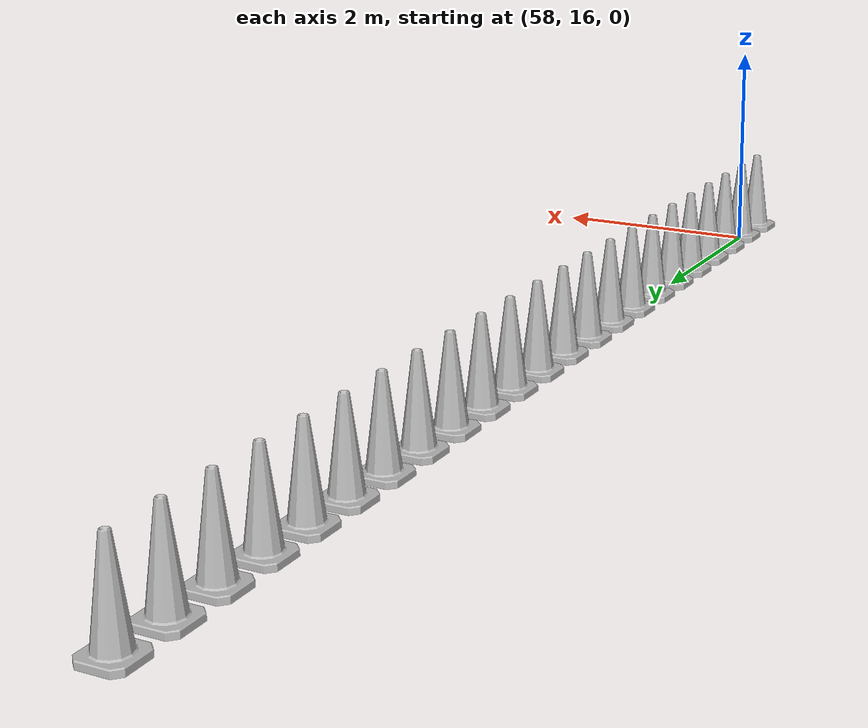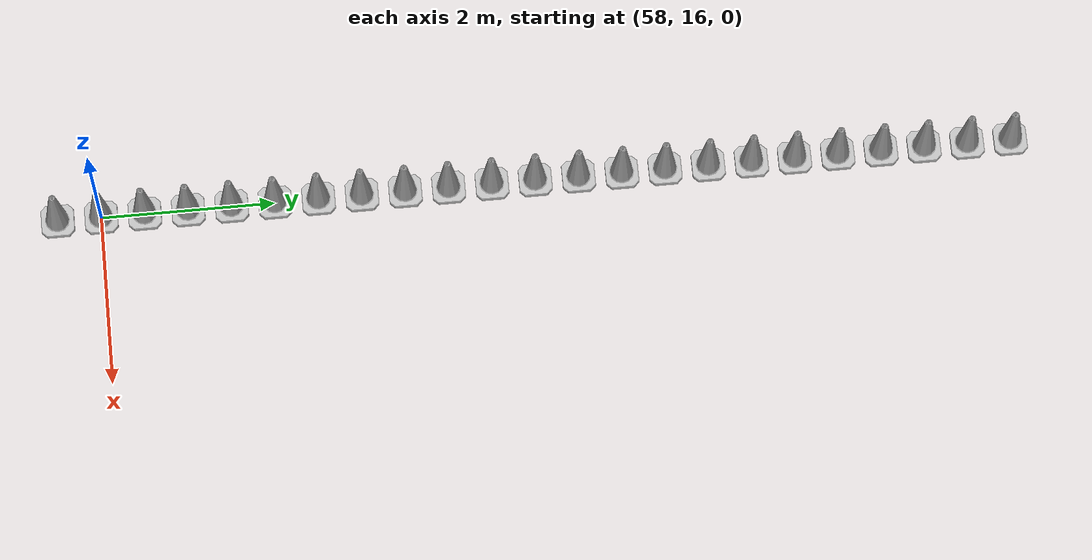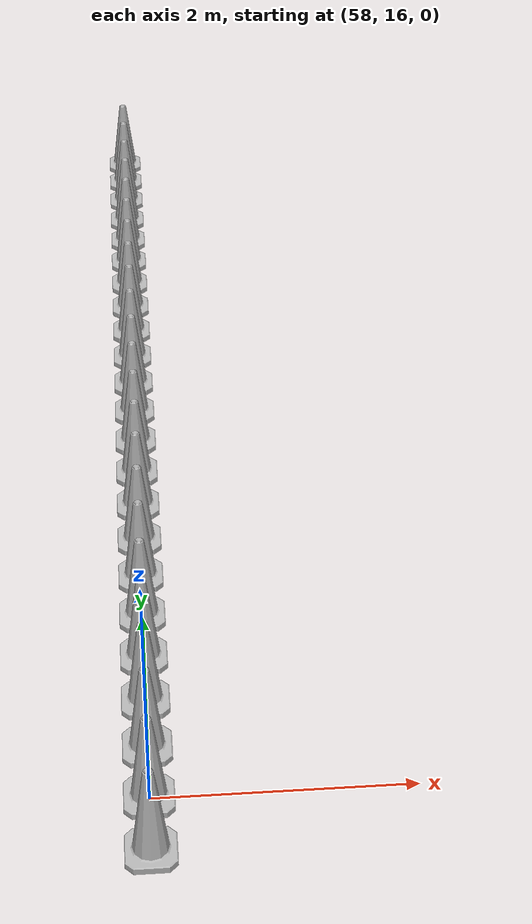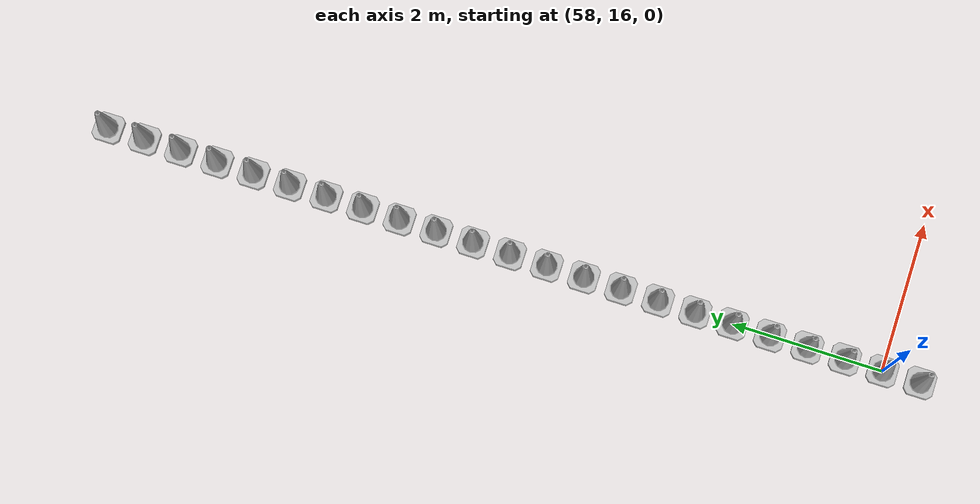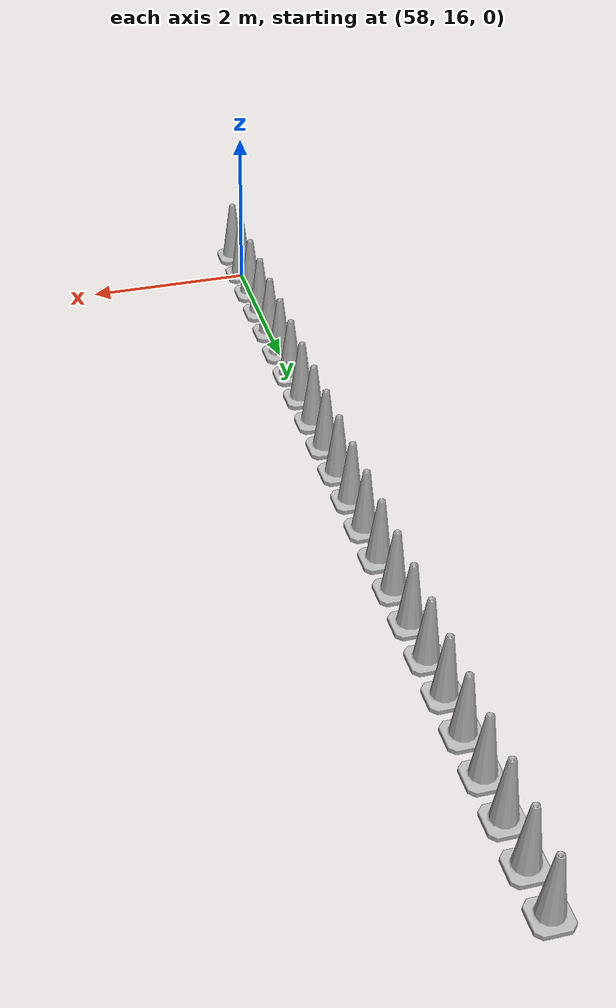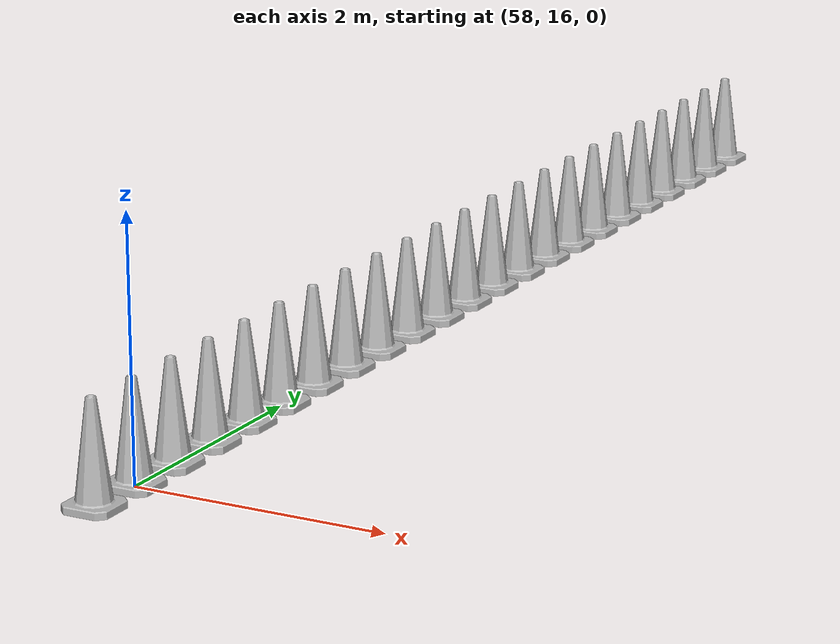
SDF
<sdf version="1.4">
 <world name="default">
  <include><uri>model://sun</uri></include>
  <model name="Construction Cone 14">
   <link name="link">
    <collision name="collision">
     <geometry>
      <mesh><scale>7.5 7.5 7.5</scale><uri>model://construction_cone/meshes/construction_cone.dae</uri></mesh>
     </geometry>
    </collision>
    <visual name="visual">
     <geometry>
      <mesh><scale>7.5 7.5 7.5</scale><uri>model://construction_cone/meshes/construction_cone.dae</uri></mesh>
     </geometry>
    </visual>
    <velocity_decay><linear>0</linear><angular>0</angular></velocity_decay>
    <inertial>
     <inertia><ixx>1</ixx><ixy>0</ixy><ixz>0</ixz><iyy>1</iyy><iyz>0</iyz><izz>1</izz></inertia>
     <mass>1</mass>
    </inertial>
   </link>
   <pose>58 15.5 0 0 -0 0</pose>
   <static>0</static>
  </model>
  <model name="Construction Cone 15">
   <link name="link">
    <collision name="collision">
     <geometry>
      <mesh><scale>7.5 7.5 7.5</scale><uri>model://construction_cone/meshes/construction_cone.dae</uri></mesh>
     </geometry>
    </collision>
    <visual name="visual">
     <geometry>
      <mesh><scale>7.5 7.5 7.5</scale><uri>model://construction_cone/meshes/construction_cone.dae</uri></mesh>
     </geometry>
    </visual>
    <velocity_decay><linear>0</linear><angular>0</angular></velocity_decay>
    <inertial>
     <inertia><ixx>1</ixx><ixy>0</ixy><ixz>0</ixz><iyy>1</iyy><iyz>0</iyz><izz>1</izz></inertia>
     <mass>1</mass>
    </inertial>
   </link>
   <pose>58 16 0 0 -0 0</pose>
   <static>0</static>
  </model>
  <model name="Construction Cone 16">
   <link name="link">
    <collision name="collision">
     <geometry>
      <mesh><scale>7.5 7.5 7.5</scale><uri>model://construction_cone/meshes/construction_cone.dae</uri></mesh>
     </geometry>
    </collision>
    <visual name="visual">
     <geometry>
      <mesh><scale>7.5 7.5 7.5</scale><uri>model://construction_cone/meshes/construction_cone.dae</uri></mesh>
     </geometry>
    </visual>
    <velocity_decay><linear>0</linear><angular>0</angular></velocity_decay>
    <inertial>
     <inertia><ixx>1</ixx><ixy>0</ixy><ixz>0</ixz><iyy>1</iyy><iyz>0</iyz><izz>1</izz></inertia>
     <mass>1</mass>
    </inertial>
   </link>
   <pose>58 16.5 0 0 -0 0</pose>
   <static>0</static>
  </model>
  <model name="Construction Cone 17">
   <link name="link">
    <collision name="collision">
     <geometry>
      <mesh><scale>7.5 7.5 7.5</scale><uri>model://construction_cone/meshes/construction_cone.dae</uri></mesh>
     </geometry>
    </collision>
    <visual name="visual">
     <geometry>
      <mesh><scale>7.5 7.5 7.5</scale><uri>model://construction_cone/meshes/construction_cone.dae</uri></mesh>
     </geometry>
    </visual>
    <velocity_decay><linear>0</linear><angular>0</angular></velocity_decay>
    <inertial>
     <inertia><ixx>1</ixx><ixy>0</ixy><ixz>0</ixz><iyy>1</iyy><iyz>0</iyz><izz>1</izz></inertia>
     <mass>1</mass>
    </inertial>
   </link>
   <pose>58 17 0 0 -0 0</pose>
   <static>0</static>
  </model>
  <model name="Construction Cone 18">
   <link name="link">
    <collision name="collision">
     <geometry>
      <mesh><scale>7.5 7.5 7.5</scale><uri>model://construction_cone/meshes/construction_cone.dae</uri></mesh>
     </geometry>
    </collision>
    <visual name="visual">
     <geometry>
      <mesh><scale>7.5 7.5 7.5</scale><uri>model://construction_cone/meshes/construction_cone.dae</uri></mesh>
     </geometry>
    </visual>
    <velocity_decay><linear>0</linear><angular>0</angular></velocity_decay>
    <inertial>
     <inertia><ixx>1</ixx><ixy>0</ixy><ixz>0</ixz><iyy>1</iyy><iyz>0</iyz><izz>1</izz></inertia>
     <mass>1</mass>
    </inertial>
   </link>
   <pose>58 17.5 0 0 -0 0</pose>
   <static>0</static>
  </model>
  <model name="Construction Cone 19">
   <link name="link">
    <collision name="collision">
     <geometry>
      <mesh><scale>7.5 7.5 7.5</scale><uri>model://construction_cone/meshes/construction_cone.dae</uri></mesh>
     </geometry>
    </collision>
    <visual name="visual">
     <geometry>
      <mesh><scale>7.5 7.5 7.5</scale><uri>model://construction_cone/meshes/construction_cone.dae</uri></mesh>
     </geometry>
    </visual>
    <velocity_decay><linear>0</linear><angular>0</angular></velocity_decay>
    <inertial>
     <inertia><ixx>1</ixx><ixy>0</ixy><ixz>0</ixz><iyy>1</iyy><iyz>0</iyz><izz>1</izz></inertia>
     <mass>1</mass>
    </inertial>
   </link>
   <pose>58 18 0 0 -0 0</pose>
   <static>0</static>
  </model>
  <model name="Construction Cone 20">
   <link name="link">
    <collision name="collision">
     <geometry>
      <mesh><scale>7.5 7.5 7.5</scale><uri>model://construction_cone/meshes/construction_cone.dae</uri></mesh>
     </geometry>
    </collision>
    <visual name="visual">
     <geometry>
      <mesh><scale>7.5 7.5 7.5</scale><uri>model://construction_cone/meshes/construction_cone.dae</uri></mesh>
     </geometry>
    </visual>
    <velocity_decay><linear>0</linear><angular>0</angular></velocity_decay>
    <inertial>
     <inertia><ixx>1</ixx><ixy>0</ixy><ixz>0</ixz><iyy>1</iyy><iyz>0</iyz><izz>1</izz></inertia>
     <mass>1</mass>
    </inertial>
   </link>
   <pose>58 18.5 0 0 -0 0</pose>
   <static>0</static>
  </model>
  <model name="Construction Cone 21">
   <link name="link">
    <collision name="collision">
     <geometry>
      <mesh><scale>7.5 7.5 7.5</scale><uri>model://construction_cone/meshes/construction_cone.dae</uri></mesh>
     </geometry>
    </collision>
    <visual name="visual">
     <geometry>
      <mesh><scale>7.5 7.5 7.5</scale><uri>model://construction_cone/meshes/construction_cone.dae</uri></mesh>
     </geometry>
    </visual>
    <velocity_decay><linear>0</linear><angular>0</angular></velocity_decay>
    <inertial>
     <inertia><ixx>1</ixx><ixy>0</ixy><ixz>0</ixz><iyy>1</iyy><iyz>0</iyz><izz>1</izz></inertia>
     <mass>1</mass>
    </inertial>
   </link>
   <pose>58 19 0 0 -0 0</pose>
   <static>0</static>
  </model>
  <model name="Construction Cone 22">
   <link name="link">
    <collision name="collision">
     <geometry>
      <mesh><scale>7.5 7.5 7.5</scale><uri>model://construction_cone/meshes/construction_cone.dae</uri></mesh>
     </geometry>
    </collision>
    <visual name="visual">
     <geometry>
      <mesh><scale>7.5 7.5 7.5</scale><uri>model://construction_cone/meshes/construction_cone.dae</uri></mesh>
     </geometry>
    </visual>
    <velocity_decay><linear>0</linear><angular>0</angular></velocity_decay>
    <inertial>
     <inertia><ixx>1</ixx><ixy>0</ixy><ixz>0</ixz><iyy>1</iyy><iyz>0</iyz><izz>1</izz></inertia>
     <mass>1</mass>
    </inertial>
   </link>
   <pose>58 19.5 0 0 -0 0</pose>
   <static>0</static>
  </model>
  <model name="Construction Cone 23">
   <link name="link">
    <collision name="collision">
     <geometry>
      <mesh><scale>7.5 7.5 7.5</scale><uri>model://construction_cone/meshes/construction_cone.dae</uri></mesh>
     </geometry>
    </collision>
    <visual name="visual">
     <geometry>
      <mesh><scale>7.5 7.5 7.5</scale><uri>model://construction_cone/meshes/construction_cone.dae</uri></mesh>
     </geometry>
    </visual>
    <velocity_decay><linear>0</linear><angular>0</angular></velocity_decay>
    <inertial>
     <inertia><ixx>1</ixx><ixy>0</ixy><ixz>0</ixz><iyy>1</iyy><iyz>0</iyz><izz>1</izz></inertia>
     <mass>1</mass>
    </inertial>
   </link>
   <pose>58 20 0 0 -0 0</pose>
   <static>0</static>
  </model>
  <model name="Construction Cone 24">
   <link name="link">
    <collision name="collision">
     <geometry>
      <mesh><scale>7.5 7.5 7.5</scale><uri>model://construction_cone/meshes/construction_cone.dae</uri></mesh>
     </geometry>
    </collision>
    <visual name="visual">
     <geometry>
      <mesh><scale>7.5 7.5 7.5</scale><uri>model://construction_cone/meshes/construction_cone.dae</uri></mesh>
     </geometry>
    </visual>
    <velocity_decay><linear>0</linear><angular>0</angular></velocity_decay>
    <inertial>
     <inertia><ixx>1</ixx><ixy>0</ixy><ixz>0</ixz><iyy>1</iyy><iyz>0</iyz><izz>1</izz></inertia>
     <mass>1</mass>
    </inertial>
   </link>
   <pose>58 20.5 0 0 -0 0</pose>
   <static>0</static>
  </model>
  <model name="Construction Cone 25">
   <link name="link">
    <collision name="collision">
     <geometry>
      <mesh><scale>7.5 7.5 7.5</scale><uri>model://construction_cone/meshes/construction_cone.dae</uri></mesh>
     </geometry>
    </collision>
    <visual name="visual">
     <geometry>
      <mesh><scale>7.5 7.5 7.5</scale><uri>model://construction_cone/meshes/construction_cone.dae</uri></mesh>
     </geometry>
    </visual>
    <velocity_decay><linear>0</linear><angular>0</angular></velocity_decay>
    <inertial>
     <inertia><ixx>1</ixx><ixy>0</ixy><ixz>0</ixz><iyy>1</iyy><iyz>0</iyz><izz>1</izz></inertia>
     <mass>1</mass>
    </inertial>
   </link>
   <pose>58 21 0 0 -0 0</pose>
   <static>0</static>
  </model>
  <model name="Construction Cone 26">
   <link name="link">
    <collision name="collision">
     <geometry>
      <mesh><scale>7.5 7.5 7.5</scale><uri>model://construction_cone/meshes/construction_cone.dae</uri></mesh>
     </geometry>
    </collision>
    <visual name="visual">
     <geometry>
      <mesh><scale>7.5 7.5 7.5</scale><uri>model://construction_cone/meshes/construction_cone.dae</uri></mesh>
     </geometry>
    </visual>
    <velocity_decay><linear>0</linear><angular>0</angular></velocity_decay>
    <inertial>
     <inertia><ixx>1</ixx><ixy>0</ixy><ixz>0</ixz><iyy>1</iyy><iyz>0</iyz><izz>1</izz></inertia>
     <mass>1</mass>
    </inertial>
   </link>
   <pose>58 21.5 0 0 -0 0</pose>
   <static>0</static>
  </model>
  <model name="Construction Cone 27">
   <link name="link">
    <collision name="collision">
     <geometry>
      <mesh><scale>7.5 7.5 7.5</scale><uri>model://construction_cone/meshes/construction_cone.dae</uri></mesh>
     </geometry>
    </collision>
    <visual name="visual">
     <geometry>
      <mesh><scale>7.5 7.5 7.5</scale><uri>model://construction_cone/meshes/construction_cone.dae</uri></mesh>
     </geometry>
    </visual>
    <velocity_decay><linear>0</linear><angular>0</angular></velocity_decay>
    <inertial>
     <inertia><ixx>1</ixx><ixy>0</ixy><ixz>0</ixz><iyy>1</iyy><iyz>0</iyz><izz>1</izz></inertia>
     <mass>1</mass>
    </inertial>
   </link>
   <pose>58 22 0 0 -0 0</pose>
   <static>0</static>
  </model>
  <model name="Construction Cone 28">
   <link name="link">
    <collision name="collision">
     <geometry>
      <mesh><scale>7.5 7.5 7.5</scale><uri>model://construction_cone/meshes/construction_cone.dae</uri></mesh>
     </geometry>
    </collision>
    <visual name="visual">
     <geometry>
      <mesh><scale>7.5 7.5 7.5</scale><uri>model://construction_cone/meshes/construction_cone.dae</uri></mesh>
     </geometry>
    </visual>
    <velocity_decay><linear>0</linear><angular>0</angular></velocity_decay>
    <inertial>
     <inertia><ixx>1</ixx><ixy>0</ixy><ixz>0</ixz><iyy>1</iyy><iyz>0</iyz><izz>1</izz></inertia>
     <mass>1</mass>
    </inertial>
   </link>
   <pose>58 22.5 0 0 -0 0</pose>
   <static>0</static>
  </model>
  <model name="Construction Cone 29">
   <link name="link">
    <collision name="collision">
     <geometry>
      <mesh><scale>7.5 7.5 7.5</scale><uri>model://construction_cone/meshes/construction_cone.dae</uri></mesh>
     </geometry>
    </collision>
    <visual name="visual">
     <geometry>
      <mesh><scale>7.5 7.5 7.5</scale><uri>model://construction_cone/meshes/construction_cone.dae</uri></mesh>
     </geometry>
    </visual>
    <velocity_decay><linear>0</linear><angular>0</angular></velocity_decay>
    <inertial>
     <inertia><ixx>1</ixx><ixy>0</ixy><ixz>0</ixz><iyy>1</iyy><iyz>0</iyz><izz>1</izz></inertia>
     <mass>1</mass>
    </inertial>
   </link>
   <pose>58 23 0 0 -0 0</pose>
   <static>0</static>
  </model>
  <model name="Construction Cone 30">
   <link name="link">
    <collision name="collision">
     <geometry>
      <mesh><scale>7.5 7.5 7.5</scale><uri>model://construction_cone/meshes/construction_cone.dae</uri></mesh>
     </geometry>
    </collision>
    <visual name="visual">
     <geometry>
      <mesh><scale>7.5 7.5 7.5</scale><uri>model://construction_cone/meshes/construction_cone.dae</uri></mesh>
     </geometry>
    </visual>
    <velocity_decay><linear>0</linear><angular>0</angular></velocity_decay>
    <inertial>
     <inertia><ixx>1</ixx><ixy>0</ixy><ixz>0</ixz><iyy>1</iyy><iyz>0</iyz><izz>1</izz></inertia>
     <mass>1</mass>
    </inertial>
   </link>
   <pose>58 23.5 0 0 -0 0</pose>
   <static>0</static>
  </model>
  <model name="Construction Cone 31">
   <link name="link">
    <collision name="collision">
     <geometry>
      <mesh><scale>7.5 7.5 7.5</scale><uri>model://construction_cone/meshes/construction_cone.dae</uri></mesh>
     </geometry>
    </collision>
    <visual name="visual">
     <geometry>
      <mesh><scale>7.5 7.5 7.5</scale><uri>model://construction_cone/meshes/construction_cone.dae</uri></mesh>
     </geometry>
    </visual>
    <velocity_decay><linear>0</linear><angular>0</angular></velocity_decay>
    <inertial>
     <inertia><ixx>1</ixx><ixy>0</ixy><ixz>0</ixz><iyy>1</iyy><iyz>0</iyz><izz>1</izz></inertia>
     <mass>1</mass>
    </inertial>
   </link>
   <pose>58 24 0 0 -0 0</pose>
   <static>0</static>
  </model>
  <model name="Construction Cone 32">
   <link name="link">
    <collision name="collision">
     <geometry>
      <mesh><scale>7.5 7.5 7.5</scale><uri>model://construction_cone/meshes/construction_cone.dae</uri></mesh>
     </geometry>
    </collision>
    <visual name="visual">
     <geometry>
      <mesh><scale>7.5 7.5 7.5</scale><uri>model://construction_cone/meshes/construction_cone.dae</uri></mesh>
     </geometry>
    </visual>
    <velocity_decay><linear>0</linear><angular>0</angular></velocity_decay>
    <inertial>
     <inertia><ixx>1</ixx><ixy>0</ixy><ixz>0</ixz><iyy>1</iyy><iyz>0</iyz><izz>1</izz></inertia>
     <mass>1</mass>
    </inertial>
   </link>
   <pose>58 24.5 0 0 -0 0</pose>
   <static>0</static>
  </model>
  <model name="Construction Cone 33">
   <link name="link">
    <collision name="collision">
     <geometry>
      <mesh><scale>7.5 7.5 7.5</scale><uri>model://construction_cone/meshes/construction_cone.dae</uri></mesh>
     </geometry>
    </collision>
    <visual name="visual">
     <geometry>
      <mesh><scale>7.5 7.5 7.5</scale><uri>model://construction_cone/meshes/construction_cone.dae</uri></mesh>
     </geometry>
    </visual>
    <velocity_decay><linear>0</linear><angular>0</angular></velocity_decay>
    <inertial>
     <inertia><ixx>1</ixx><ixy>0</ixy><ixz>0</ixz><iyy>1</iyy><iyz>0</iyz><izz>1</izz></inertia>
     <mass>1</mass>
    </inertial>
   </link>
   <pose>58 25 0 0 -0 0</pose>
   <static>0</static>
  </model>
  <model name="Construction Cone 34">
   <link name="link">
    <collision name="collision">
     <geometry>
      <mesh><scale>7.5 7.5 7.5</scale><uri>model://construction_cone/meshes/construction_cone.dae</uri></mesh>
     </geometry>
    </collision>
    <visual name="visual">
     <geometry>
      <mesh><scale>7.5 7.5 7.5</scale><uri>model://construction_cone/meshes/construction_cone.dae</uri></mesh>
     </geometry>
    </visual>
    <velocity_decay><linear>0</linear><angular>0</angular></velocity_decay>
    <inertial>
     <inertia><ixx>1</ixx><ixy>0</ixy><ixz>0</ixz><iyy>1</iyy><iyz>0</iyz><izz>1</izz></inertia>
     <mass>1</mass>
    </inertial>
   </link>
   <pose>58 25.5 0 0 -0 0</pose>
   <static>0</static>
  </model>
  <model name="Construction Cone 35">
   <link name="link">
    <collision name="collision">
     <geometry>
      <mesh><scale>7.5 7.5 7.5</scale><uri>model://construction_cone/meshes/construction_cone.dae</uri></mesh>
     </geometry>
    </collision>
    <visual name="visual">
     <geometry>
      <mesh><scale>7.5 7.5 7.5</scale><uri>model://construction_cone/meshes/construction_cone.dae</uri></mesh>
     </geometry>
    </visual>
    <velocity_decay><linear>0</linear><angular>0</angular></velocity_decay>
    <inertial>
     <inertia><ixx>1</ixx><ixy>0</ixy><ixz>0</ixz><iyy>1</iyy><iyz>0</iyz><izz>1</izz></inertia>
     <mass>1</mass>
    </inertial>
   </link>
   <pose>58 26 0 0 -0 0</pose>
   <static>0</static>
  </model>
  <model name="Construction Cone 36">
   <link name="link">
    <collision name="collision">
     <geometry>
      <mesh><scale>7.5 7.5 7.5</scale><uri>model://construction_cone/meshes/construction_cone.dae</uri></mesh>
     </geometry>
    </collision>
    <visual name="visual">
     <geometry>
      <mesh><scale>7.5 7.5 7.5</scale><uri>model://construction_cone/meshes/construction_cone.dae</uri></mesh>
     </geometry>
    </visual>
    <velocity_decay><linear>0</linear><angular>0</angular></velocity_decay>
    <inertial>
     <inertia><ixx>1</ixx><ixy>0</ixy><ixz>0</ixz><iyy>1</iyy><iyz>0</iyz><izz>1</izz></inertia>
     <mass>1</mass>
    </inertial>
   </link>
   <pose>58 26.5 0 0 -0 0</pose>
   <static>0</static>
  </model>
 </world>
</sdf>
